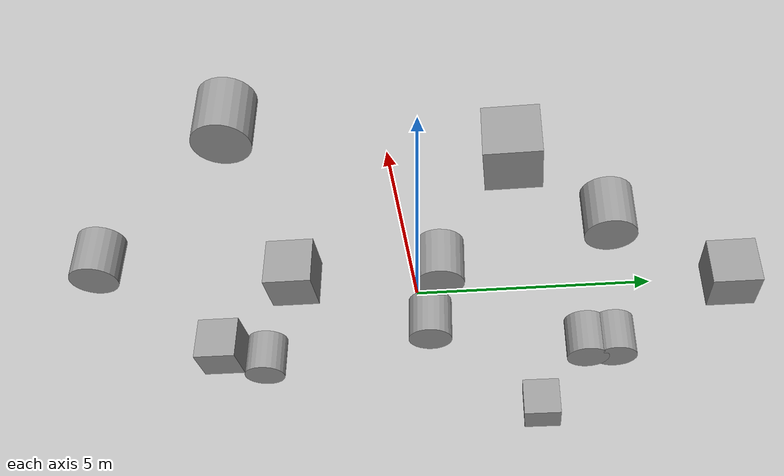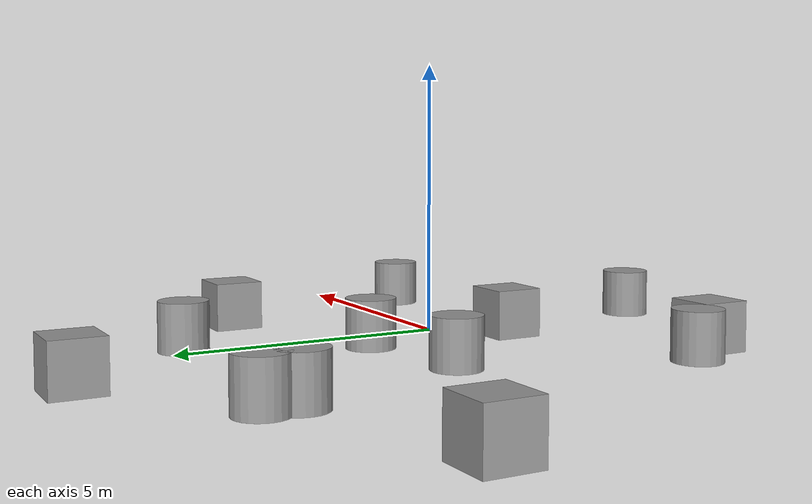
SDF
<?xml version='1.0'?>
<sdf version='1.7'>
  <model name='simple_map_big2'>
    <link name='link_0'>
      <inertial>
        <mass>1</mass>
        <inertia>
          <ixx>0.166667</ixx>
          <ixy>0</ixy>
          <ixz>0</ixz>
          <iyy>0.166667</iyy>
          <iyz>0</iyz>
          <izz>0.166667</izz>
        </inertia>
        <pose>0 0 0 0 -0 0</pose>
      </inertial>
      <pose>-2.14735 -5.05055 -0 0 -0 0</pose>
      <self_collide>0</self_collide>
      <enable_wind>0</enable_wind>
      <kinematic>0</kinematic>
      <visual name='visual'>
        <pose>0 0 0 0 -0 0</pose>
        <geometry>
          <box>
            <size>1 1 1</size>
          </box>
        </geometry>
        <material>
          <lighting>1</lighting>
          <script>
            <uri>file://media/materials/scripts/gazebo.material</uri>
            <name>Gazebo/Grey</name>
          </script>
          <shader type='pixel'/>
        </material>
        <transparency>0</transparency>
        <cast_shadows>1</cast_shadows>
      </visual>
      <collision name='collision'>
        <laser_retro>0</laser_retro>
        <max_contacts>10</max_contacts>
        <pose>0 0 0 0 -0 0</pose>
        <geometry>
          <box>
            <size>1 1 1</size>
          </box>
        </geometry>
        <surface>
          <friction>
            <ode>
              <mu>1</mu>
              <mu2>1</mu2>
              <fdir1>0 0 0</fdir1>
              <slip1>0</slip1>
              <slip2>0</slip2>
            </ode>
            <torsional>
              <coefficient>1</coefficient>
              <patch_radius>0</patch_radius>
              <surface_radius>0</surface_radius>
              <use_patch_radius>1</use_patch_radius>
              <ode>
                <slip>0</slip>
              </ode>
            </torsional>
          </friction>
          <bounce>
            <restitution_coefficient>0</restitution_coefficient>
            <threshold>1e+06</threshold>
          </bounce>
          <contact>
            <collide_without_contact>0</collide_without_contact>
            <collide_without_contact_bitmask>1</collide_without_contact_bitmask>
            <collide_bitmask>1</collide_bitmask>
            <ode>
              <soft_cfm>0</soft_cfm>
              <soft_erp>0.2</soft_erp>
              <kp>1e+13</kp>
              <kd>1</kd>
              <max_vel>0.01</max_vel>
              <min_depth>0</min_depth>
            </ode>
            <bullet>
              <split_impulse>1</split_impulse>
              <split_impulse_penetration_threshold>-0.01</split_impulse_penetration_threshold>
              <soft_cfm>0</soft_cfm>
              <soft_erp>0.2</soft_erp>
              <kp>1e+13</kp>
              <kd>1</kd>
            </bullet>
          </contact>
        </surface>
      </collision>
    </link>
    <link name='link_1'>
      <inertial>
        <mass>1</mass>
        <inertia>
          <ixx>0.166667</ixx>
          <ixy>0</ixy>
          <ixz>0</ixz>
          <iyy>0.166667</iyy>
          <iyz>0</iyz>
          <izz>0.166667</izz>
        </inertia>
        <pose>0 0 0 0 -0 0</pose>
      </inertial>
      <pose>1.16281 -2.51936 0 0 -0 0</pose>
      <self_collide>0</self_collide>
      <enable_wind>0</enable_wind>
      <kinematic>0</kinematic>
      <visual name='visual'>
        <pose>0 0 0 0 -0 0</pose>
        <geometry>
          <box>
            <size>1 1 1</size>
          </box>
        </geometry>
        <material>
          <lighting>1</lighting>
          <script>
            <uri>file://media/materials/scripts/gazebo.material</uri>
            <name>Gazebo/Grey</name>
          </script>
          <shader type='pixel'/>
        </material>
        <transparency>0</transparency>
        <cast_shadows>1</cast_shadows>
      </visual>
      <collision name='collision'>
        <laser_retro>0</laser_retro>
        <max_contacts>10</max_contacts>
        <pose>0 0 0 0 -0 0</pose>
        <geometry>
          <box>
            <size>1 1 1</size>
          </box>
        </geometry>
        <surface>
          <friction>
            <ode>
              <mu>1</mu>
              <mu2>1</mu2>
              <fdir1>0 0 0</fdir1>
              <slip1>0</slip1>
              <slip2>0</slip2>
            </ode>
            <torsional>
              <coefficient>1</coefficient>
              <patch_radius>0</patch_radius>
              <surface_radius>0</surface_radius>
              <use_patch_radius>1</use_patch_radius>
              <ode>
                <slip>0</slip>
              </ode>
            </torsional>
          </friction>
          <bounce>
            <restitution_coefficient>0</restitution_coefficient>
            <threshold>1e+06</threshold>
          </bounce>
          <contact>
            <collide_without_contact>0</collide_without_contact>
            <collide_without_contact_bitmask>1</collide_without_contact_bitmask>
            <collide_bitmask>1</collide_bitmask>
            <ode>
              <soft_cfm>0</soft_cfm>
              <soft_erp>0.2</soft_erp>
              <kp>1e+13</kp>
              <kd>1</kd>
              <max_vel>0.01</max_vel>
              <min_depth>0</min_depth>
            </ode>
            <bullet>
              <split_impulse>1</split_impulse>
              <split_impulse_penetration_threshold>-0.01</split_impulse_penetration_threshold>
              <soft_cfm>0</soft_cfm>
              <soft_erp>0.2</soft_erp>
              <kp>1e+13</kp>
              <kd>1</kd>
            </bullet>
          </contact>
        </surface>
      </collision>
    </link>
    <link name='link_10'>
      <inertial>
        <mass>1</mass>
        <inertia>
          <ixx>0.145833</ixx>
          <ixy>0</ixy>
          <ixz>0</ixz>
          <iyy>0.145833</iyy>
          <iyz>0</iyz>
          <izz>0.125</izz>
        </inertia>
        <pose>0 0 0 0 -0 0</pose>
      </inertial>
      <pose>2.713 3.93803 0 0 -0 0</pose>
      <self_collide>0</self_collide>
      <enable_wind>0</enable_wind>
      <kinematic>0</kinematic>
      <visual name='visual'>
        <pose>0 0 0 0 -0 0</pose>
        <geometry>
          <cylinder>
            <radius>0.5</radius>
            <length>1</length>
          </cylinder>
        </geometry>
        <material>
          <lighting>1</lighting>
          <script>
            <uri>file://media/materials/scripts/gazebo.material</uri>
            <name>Gazebo/Grey</name>
          </script>
          <shader type='pixel'/>
        </material>
        <transparency>0</transparency>
        <cast_shadows>1</cast_shadows>
      </visual>
      <collision name='collision'>
        <laser_retro>0</laser_retro>
        <max_contacts>10</max_contacts>
        <pose>0 0 0 0 -0 0</pose>
        <geometry>
          <cylinder>
            <radius>0.5</radius>
            <length>1</length>
          </cylinder>
        </geometry>
        <surface>
          <friction>
            <ode>
              <mu>1</mu>
              <mu2>1</mu2>
              <fdir1>0 0 0</fdir1>
              <slip1>0</slip1>
              <slip2>0</slip2>
            </ode>
            <torsional>
              <coefficient>1</coefficient>
              <patch_radius>0</patch_radius>
              <surface_radius>0</surface_radius>
              <use_patch_radius>1</use_patch_radius>
              <ode>
                <slip>0</slip>
              </ode>
            </torsional>
          </friction>
          <bounce>
            <restitution_coefficient>0</restitution_coefficient>
            <threshold>1e+06</threshold>
          </bounce>
          <contact>
            <collide_without_contact>0</collide_without_contact>
            <collide_without_contact_bitmask>1</collide_without_contact_bitmask>
            <collide_bitmask>1</collide_bitmask>
            <ode>
              <soft_cfm>0</soft_cfm>
              <soft_erp>0.2</soft_erp>
              <kp>1e+13</kp>
              <kd>1</kd>
              <max_vel>0.01</max_vel>
              <min_depth>0</min_depth>
            </ode>
            <bullet>
              <split_impulse>1</split_impulse>
              <split_impulse_penetration_threshold>-0.01</split_impulse_penetration_threshold>
              <soft_cfm>0</soft_cfm>
              <soft_erp>0.2</soft_erp>
              <kp>1e+13</kp>
              <kd>1</kd>
            </bullet>
          </contact>
        </surface>
      </collision>
    </link>
    <link name='link_11'>
      <inertial>
        <mass>1</mass>
        <inertia>
          <ixx>0.145833</ixx>
          <ixy>0</ixy>
          <ixz>0</ixz>
          <iyy>0.145833</iyy>
          <iyz>0</iyz>
          <izz>0.125</izz>
        </inertia>
        <pose>0 0 0 0 -0 0</pose>
      </inertial>
      <pose>1.25513 0.60625 0 0 -0 0</pose>
      <self_collide>0</self_collide>
      <enable_wind>0</enable_wind>
      <kinematic>0</kinematic>
      <visual name='visual'>
        <pose>0 0 0 0 -0 0</pose>
        <geometry>
          <cylinder>
            <radius>0.5</radius>
            <length>1</length>
          </cylinder>
        </geometry>
        <material>
          <lighting>1</lighting>
          <script>
            <uri>file://media/materials/scripts/gazebo.material</uri>
            <name>Gazebo/Grey</name>
          </script>
          <shader type='pixel'/>
        </material>
        <transparency>0</transparency>
        <cast_shadows>1</cast_shadows>
      </visual>
      <collision name='collision'>
        <laser_retro>0</laser_retro>
        <max_contacts>10</max_contacts>
        <pose>0 0 0 0 -0 0</pose>
        <geometry>
          <cylinder>
            <radius>0.5</radius>
            <length>1</length>
          </cylinder>
        </geometry>
        <surface>
          <friction>
            <ode>
              <mu>1</mu>
              <mu2>1</mu2>
              <fdir1>0 0 0</fdir1>
              <slip1>0</slip1>
              <slip2>0</slip2>
            </ode>
            <torsional>
              <coefficient>1</coefficient>
              <patch_radius>0</patch_radius>
              <surface_radius>0</surface_radius>
              <use_patch_radius>1</use_patch_radius>
              <ode>
                <slip>0</slip>
              </ode>
            </torsional>
          </friction>
          <bounce>
            <restitution_coefficient>0</restitution_coefficient>
            <threshold>1e+06</threshold>
          </bounce>
          <contact>
            <collide_without_contact>0</collide_without_contact>
            <collide_without_contact_bitmask>1</collide_without_contact_bitmask>
            <collide_bitmask>1</collide_bitmask>
            <ode>
              <soft_cfm>0</soft_cfm>
              <soft_erp>0.2</soft_erp>
              <kp>1e+13</kp>
              <kd>1</kd>
              <max_vel>0.01</max_vel>
              <min_depth>0</min_depth>
            </ode>
            <bullet>
              <split_impulse>1</split_impulse>
              <split_impulse_penetration_threshold>-0.01</split_impulse_penetration_threshold>
              <soft_cfm>0</soft_cfm>
              <soft_erp>0.2</soft_erp>
              <kp>1e+13</kp>
              <kd>1</kd>
            </bullet>
          </contact>
        </surface>
      </collision>
    </link>
    <link name='link_12'>
      <inertial>
        <mass>1</mass>
        <inertia>
          <ixx>0.145833</ixx>
          <ixy>0</ixy>
          <ixz>0</ixz>
          <iyy>0.145833</iyy>
          <iyz>0</iyz>
          <izz>0.125</izz>
        </inertia>
        <pose>0 0 0 0 -0 0</pose>
      </inertial>
      <pose>2.07511 -6.40625 0 0 -0 0</pose>
      <self_collide>0</self_collide>
      <enable_wind>0</enable_wind>
      <kinematic>0</kinematic>
      <visual name='visual'>
        <pose>0 0 0 0 -0 0</pose>
        <geometry>
          <cylinder>
            <radius>0.5</radius>
            <length>1</length>
          </cylinder>
        </geometry>
        <material>
          <lighting>1</lighting>
          <script>
            <uri>file://media/materials/scripts/gazebo.material</uri>
            <name>Gazebo/Grey</name>
          </script>
          <shader type='pixel'/>
        </material>
        <transparency>0</transparency>
        <cast_shadows>1</cast_shadows>
      </visual>
      <collision name='collision'>
        <laser_retro>0</laser_retro>
        <max_contacts>10</max_contacts>
        <pose>0 0 0 0 -0 0</pose>
        <geometry>
          <cylinder>
            <radius>0.5</radius>
            <length>1</length>
          </cylinder>
        </geometry>
        <surface>
          <friction>
            <ode>
              <mu>1</mu>
              <mu2>1</mu2>
              <fdir1>0 0 0</fdir1>
              <slip1>0</slip1>
              <slip2>0</slip2>
            </ode>
            <torsional>
              <coefficient>1</coefficient>
              <patch_radius>0</patch_radius>
              <surface_radius>0</surface_radius>
              <use_patch_radius>1</use_patch_radius>
              <ode>
                <slip>0</slip>
              </ode>
            </torsional>
          </friction>
          <bounce>
            <restitution_coefficient>0</restitution_coefficient>
            <threshold>1e+06</threshold>
          </bounce>
          <contact>
            <collide_without_contact>0</collide_without_contact>
            <collide_without_contact_bitmask>1</collide_without_contact_bitmask>
            <collide_bitmask>1</collide_bitmask>
            <ode>
              <soft_cfm>0</soft_cfm>
              <soft_erp>0.2</soft_erp>
              <kp>1e+13</kp>
              <kd>1</kd>
              <max_vel>0.01</max_vel>
              <min_depth>0</min_depth>
            </ode>
            <bullet>
              <split_impulse>1</split_impulse>
              <split_impulse_penetration_threshold>-0.01</split_impulse_penetration_threshold>
              <soft_cfm>0</soft_cfm>
              <soft_erp>0.2</soft_erp>
              <kp>1e+13</kp>
              <kd>1</kd>
            </bullet>
          </contact>
        </surface>
      </collision>
    </link>
    <link name='link_14'>
      <inertial>
        <mass>1</mass>
        <inertia>
          <ixx>0.166667</ixx>
          <ixy>0</ixy>
          <ixz>0</ixz>
          <iyy>0.166667</iyy>
          <iyz>0</iyz>
          <izz>0.166667</izz>
        </inertia>
        <pose>0 0 0 0 -0 0</pose>
      </inertial>
      <pose>0.217301 6.66191 0 0 -0 0</pose>
      <self_collide>0</self_collide>
      <enable_wind>0</enable_wind>
      <kinematic>0</kinematic>
      <visual name='visual'>
        <pose>0 0 0 0 -0 0</pose>
        <geometry>
          <box>
            <size>1 1 1</size>
          </box>
        </geometry>
        <material>
          <lighting>1</lighting>
          <script>
            <uri>file://media/materials/scripts/gazebo.material</uri>
            <name>Gazebo/Grey</name>
          </script>
          <shader type='pixel'/>
        </material>
        <transparency>0</transparency>
        <cast_shadows>1</cast_shadows>
      </visual>
      <collision name='collision'>
        <laser_retro>0</laser_retro>
        <max_contacts>10</max_contacts>
        <pose>0 0 0 0 -0 0</pose>
        <geometry>
          <box>
            <size>1 1 1</size>
          </box>
        </geometry>
        <surface>
          <friction>
            <ode>
              <mu>1</mu>
              <mu2>1</mu2>
              <fdir1>0 0 0</fdir1>
              <slip1>0</slip1>
              <slip2>0</slip2>
            </ode>
            <torsional>
              <coefficient>1</coefficient>
              <patch_radius>0</patch_radius>
              <surface_radius>0</surface_radius>
              <use_patch_radius>1</use_patch_radius>
              <ode>
                <slip>0</slip>
              </ode>
            </torsional>
          </friction>
          <bounce>
            <restitution_coefficient>0</restitution_coefficient>
            <threshold>1e+06</threshold>
          </bounce>
          <contact>
            <collide_without_contact>0</collide_without_contact>
            <collide_without_contact_bitmask>1</collide_without_contact_bitmask>
            <collide_bitmask>1</collide_bitmask>
            <ode>
              <soft_cfm>0</soft_cfm>
              <soft_erp>0.2</soft_erp>
              <kp>1e+13</kp>
              <kd>1</kd>
              <max_vel>0.01</max_vel>
              <min_depth>0</min_depth>
            </ode>
            <bullet>
              <split_impulse>1</split_impulse>
              <split_impulse_penetration_threshold>-0.01</split_impulse_penetration_threshold>
              <soft_cfm>0</soft_cfm>
              <soft_erp>0.2</soft_erp>
              <kp>1e+13</kp>
              <kd>1</kd>
            </bullet>
          </contact>
        </surface>
      </collision>
    </link>
    <link name='link_15'>
      <inertial>
        <mass>1</mass>
        <inertia>
          <ixx>0.145833</ixx>
          <ixy>0</ixy>
          <ixz>0</ixz>
          <iyy>0.145833</iyy>
          <iyz>0</iyz>
          <izz>0.125</izz>
        </inertia>
        <pose>0 0 0 0 -0 0</pose>
      </inertial>
      <pose>-2.66292 4.4717 -0 0 -0 0</pose>
      <self_collide>0</self_collide>
      <enable_wind>0</enable_wind>
      <kinematic>0</kinematic>
      <visual name='visual'>
        <pose>0 0 0 0 -0 0</pose>
        <geometry>
          <cylinder>
            <radius>0.5</radius>
            <length>1</length>
          </cylinder>
        </geometry>
        <material>
          <lighting>1</lighting>
          <script>
            <uri>file://media/materials/scripts/gazebo.material</uri>
            <name>Gazebo/Grey</name>
          </script>
          <shader type='pixel'/>
        </material>
        <transparency>0</transparency>
        <cast_shadows>1</cast_shadows>
      </visual>
      <collision name='collision'>
        <laser_retro>0</laser_retro>
        <max_contacts>10</max_contacts>
        <pose>0 0 0 0 -0 0</pose>
        <geometry>
          <cylinder>
            <radius>0.5</radius>
            <length>1</length>
          </cylinder>
        </geometry>
        <surface>
          <friction>
            <ode>
              <mu>1</mu>
              <mu2>1</mu2>
              <fdir1>0 0 0</fdir1>
              <slip1>0</slip1>
              <slip2>0</slip2>
            </ode>
            <torsional>
              <coefficient>1</coefficient>
              <patch_radius>0</patch_radius>
              <surface_radius>0</surface_radius>
              <use_patch_radius>1</use_patch_radius>
              <ode>
                <slip>0</slip>
              </ode>
            </torsional>
          </friction>
          <bounce>
            <restitution_coefficient>0</restitution_coefficient>
            <threshold>1e+06</threshold>
          </bounce>
          <contact>
            <collide_without_contact>0</collide_without_contact>
            <collide_without_contact_bitmask>1</collide_without_contact_bitmask>
            <collide_bitmask>1</collide_bitmask>
            <ode>
              <soft_cfm>0</soft_cfm>
              <soft_erp>0.2</soft_erp>
              <kp>1e+13</kp>
              <kd>1</kd>
              <max_vel>0.01</max_vel>
              <min_depth>0</min_depth>
            </ode>
            <bullet>
              <split_impulse>1</split_impulse>
              <split_impulse_penetration_threshold>-0.01</split_impulse_penetration_threshold>
              <soft_cfm>0</soft_cfm>
              <soft_erp>0.2</soft_erp>
              <kp>1e+13</kp>
              <kd>1</kd>
            </bullet>
          </contact>
        </surface>
      </collision>
    </link>
    <link name='link_2'>
      <inertial>
        <mass>1</mass>
        <inertia>
          <ixx>0.145833</ixx>
          <ixy>0</ixy>
          <ixz>0</ixz>
          <iyy>0.145833</iyy>
          <iyz>0</iyz>
          <izz>0.125</izz>
        </inertia>
        <pose>0 0 0 0 -0 0</pose>
      </inertial>
      <pose>-2.88083 -4.10779 -0 0 -0 0</pose>
      <self_collide>0</self_collide>
      <enable_wind>0</enable_wind>
      <kinematic>0</kinematic>
      <visual name='visual'>
        <pose>0 0 0 0 -0 0</pose>
        <geometry>
          <cylinder>
            <radius>0.5</radius>
            <length>1</length>
          </cylinder>
        </geometry>
        <material>
          <lighting>1</lighting>
          <script>
            <uri>file://media/materials/scripts/gazebo.material</uri>
            <name>Gazebo/Grey</name>
          </script>
          <shader type='pixel'/>
        </material>
        <transparency>0</transparency>
        <cast_shadows>1</cast_shadows>
      </visual>
      <collision name='collision'>
        <laser_retro>0</laser_retro>
        <max_contacts>10</max_contacts>
        <pose>0 0 0 0 -0 0</pose>
        <geometry>
          <cylinder>
            <radius>0.5</radius>
            <length>1</length>
          </cylinder>
        </geometry>
        <surface>
          <friction>
            <ode>
              <mu>1</mu>
              <mu2>1</mu2>
              <fdir1>0 0 0</fdir1>
              <slip1>0</slip1>
              <slip2>0</slip2>
            </ode>
            <torsional>
              <coefficient>1</coefficient>
              <patch_radius>0</patch_radius>
              <surface_radius>0</surface_radius>
              <use_patch_radius>1</use_patch_radius>
              <ode>
                <slip>0</slip>
              </ode>
            </torsional>
          </friction>
          <bounce>
            <restitution_coefficient>0</restitution_coefficient>
            <threshold>1e+06</threshold>
          </bounce>
          <contact>
            <collide_without_contact>0</collide_without_contact>
            <collide_without_contact_bitmask>1</collide_without_contact_bitmask>
            <collide_bitmask>1</collide_bitmask>
            <ode>
              <soft_cfm>0</soft_cfm>
              <soft_erp>0.2</soft_erp>
              <kp>1e+13</kp>
              <kd>1</kd>
              <max_vel>0.01</max_vel>
              <min_depth>0</min_depth>
            </ode>
            <bullet>
              <split_impulse>1</split_impulse>
              <split_impulse_penetration_threshold>-0.01</split_impulse_penetration_threshold>
              <soft_cfm>0</soft_cfm>
              <soft_erp>0.2</soft_erp>
              <kp>1e+13</kp>
              <kd>1</kd>
            </bullet>
          </contact>
        </surface>
      </collision>
    </link>
    <link name='link_3'>
      <inertial>
        <mass>1</mass>
        <inertia>
          <ixx>0.166667</ixx>
          <ixy>0</ixy>
          <ixz>0</ixz>
          <iyy>0.166667</iyy>
          <iyz>0</iyz>
          <izz>0.166667</izz>
        </inertia>
        <pose>0 0 0 0 -0 0</pose>
      </inertial>
      <pose>-6.59879 2.792 -0 0 -0 0</pose>
      <self_collide>0</self_collide>
      <enable_wind>0</enable_wind>
      <kinematic>0</kinematic>
      <visual name='visual'>
        <pose>0 0 0 0 -0 0</pose>
        <geometry>
          <box>
            <size>1 1 1</size>
          </box>
        </geometry>
        <material>
          <lighting>1</lighting>
          <script>
            <uri>file://media/materials/scripts/gazebo.material</uri>
            <name>Gazebo/Grey</name>
          </script>
          <shader type='pixel'/>
        </material>
        <transparency>0</transparency>
        <cast_shadows>1</cast_shadows>
      </visual>
      <collision name='collision'>
        <laser_retro>0</laser_retro>
        <max_contacts>10</max_contacts>
        <pose>0 0 0 0 -0 0</pose>
        <geometry>
          <box>
            <size>1 1 1</size>
          </box>
        </geometry>
        <surface>
          <friction>
            <ode>
              <mu>1</mu>
              <mu2>1</mu2>
              <fdir1>0 0 0</fdir1>
              <slip1>0</slip1>
              <slip2>0</slip2>
            </ode>
            <torsional>
              <coefficient>1</coefficient>
              <patch_radius>0</patch_radius>
              <surface_radius>0</surface_radius>
              <use_patch_radius>1</use_patch_radius>
              <ode>
                <slip>0</slip>
              </ode>
            </torsional>
          </friction>
          <bounce>
            <restitution_coefficient>0</restitution_coefficient>
            <threshold>1e+06</threshold>
          </bounce>
          <contact>
            <collide_without_contact>0</collide_without_contact>
            <collide_without_contact_bitmask>1</collide_without_contact_bitmask>
            <collide_bitmask>1</collide_bitmask>
            <ode>
              <soft_cfm>0</soft_cfm>
              <soft_erp>0.2</soft_erp>
              <kp>1e+13</kp>
              <kd>1</kd>
              <max_vel>0.01</max_vel>
              <min_depth>0</min_depth>
            </ode>
            <bullet>
              <split_impulse>1</split_impulse>
              <split_impulse_penetration_threshold>-0.01</split_impulse_penetration_threshold>
              <soft_cfm>0</soft_cfm>
              <soft_erp>0.2</soft_erp>
              <kp>1e+13</kp>
              <kd>1</kd>
            </bullet>
          </contact>
        </surface>
      </collision>
    </link>
    <link name='link_5'>
      <inertial>
        <mass>1</mass>
        <inertia>
          <ixx>0.145833</ixx>
          <ixy>0</ixy>
          <ixz>0</ixz>
          <iyy>0.145833</iyy>
          <iyz>0</iyz>
          <izz>0.125</izz>
        </inertia>
        <pose>0 0 0 0 -0 0</pose>
      </inertial>
      <pose>-2.64423 3.81355 -0 0 -0 0</pose>
      <self_collide>0</self_collide>
      <enable_wind>0</enable_wind>
      <kinematic>0</kinematic>
      <visual name='visual'>
        <pose>0 0 0 0 -0 0</pose>
        <geometry>
          <cylinder>
            <radius>0.5</radius>
            <length>1</length>
          </cylinder>
        </geometry>
        <material>
          <lighting>1</lighting>
          <script>
            <uri>file://media/materials/scripts/gazebo.material</uri>
            <name>Gazebo/Grey</name>
          </script>
          <shader type='pixel'/>
        </material>
        <transparency>0</transparency>
        <cast_shadows>1</cast_shadows>
      </visual>
      <collision name='collision'>
        <laser_retro>0</laser_retro>
        <max_contacts>10</max_contacts>
        <pose>0 0 0 0 -0 0</pose>
        <geometry>
          <cylinder>
            <radius>0.5</radius>
            <length>1</length>
          </cylinder>
        </geometry>
        <surface>
          <friction>
            <ode>
              <mu>1</mu>
              <mu2>1</mu2>
              <fdir1>0 0 0</fdir1>
              <slip1>0</slip1>
              <slip2>0</slip2>
            </ode>
            <torsional>
              <coefficient>1</coefficient>
              <patch_radius>0</patch_radius>
              <surface_radius>0</surface_radius>
              <use_patch_radius>1</use_patch_radius>
              <ode>
                <slip>0</slip>
              </ode>
            </torsional>
          </friction>
          <bounce>
            <restitution_coefficient>0</restitution_coefficient>
            <threshold>1e+06</threshold>
          </bounce>
          <contact>
            <collide_without_contact>0</collide_without_contact>
            <collide_without_contact_bitmask>1</collide_without_contact_bitmask>
            <collide_bitmask>1</collide_bitmask>
            <ode>
              <soft_cfm>0</soft_cfm>
              <soft_erp>0.2</soft_erp>
              <kp>1e+13</kp>
              <kd>1</kd>
              <max_vel>0.01</max_vel>
              <min_depth>0</min_depth>
            </ode>
            <bullet>
              <split_impulse>1</split_impulse>
              <split_impulse_penetration_threshold>-0.01</split_impulse_penetration_threshold>
              <soft_cfm>0</soft_cfm>
              <soft_erp>0.2</soft_erp>
              <kp>1e+13</kp>
              <kd>1</kd>
            </bullet>
          </contact>
        </surface>
      </collision>
    </link>
    <link name='link_6'>
      <inertial>
        <mass>1</mass>
        <inertia>
          <ixx>0.145833</ixx>
          <ixy>0</ixy>
          <ixz>0</ixz>
          <iyy>0.145833</iyy>
          <iyz>0</iyz>
          <izz>0.125</izz>
        </inertia>
        <pose>0 0 0 0 -0 0</pose>
      </inertial>
      <pose>-1.28721 0.164496 -0 0 -0 0</pose>
      <self_collide>0</self_collide>
      <enable_wind>0</enable_wind>
      <kinematic>0</kinematic>
      <visual name='visual'>
        <pose>0 0 0 0 -0 0</pose>
        <geometry>
          <cylinder>
            <radius>0.5</radius>
            <length>1</length>
          </cylinder>
        </geometry>
        <material>
          <lighting>1</lighting>
          <script>
            <uri>file://media/materials/scripts/gazebo.material</uri>
            <name>Gazebo/Grey</name>
          </script>
          <shader type='pixel'/>
        </material>
        <transparency>0</transparency>
        <cast_shadows>1</cast_shadows>
      </visual>
      <collision name='collision'>
        <laser_retro>0</laser_retro>
        <max_contacts>10</max_contacts>
        <pose>0 0 0 0 -0 0</pose>
        <geometry>
          <cylinder>
            <radius>0.5</radius>
            <length>1</length>
          </cylinder>
        </geometry>
        <surface>
          <friction>
            <ode>
              <mu>1</mu>
              <mu2>1</mu2>
              <fdir1>0 0 0</fdir1>
              <slip1>0</slip1>
              <slip2>0</slip2>
            </ode>
            <torsional>
              <coefficient>1</coefficient>
              <patch_radius>0</patch_radius>
              <surface_radius>0</surface_radius>
              <use_patch_radius>1</use_patch_radius>
              <ode>
                <slip>0</slip>
              </ode>
            </torsional>
          </friction>
          <bounce>
            <restitution_coefficient>0</restitution_coefficient>
            <threshold>1e+06</threshold>
          </bounce>
          <contact>
            <collide_without_contact>0</collide_without_contact>
            <collide_without_contact_bitmask>1</collide_without_contact_bitmask>
            <collide_bitmask>1</collide_bitmask>
            <ode>
              <soft_cfm>0</soft_cfm>
              <soft_erp>0.2</soft_erp>
              <kp>1e+13</kp>
              <kd>1</kd>
              <max_vel>0.01</max_vel>
              <min_depth>0</min_depth>
            </ode>
            <bullet>
              <split_impulse>1</split_impulse>
              <split_impulse_penetration_threshold>-0.01</split_impulse_penetration_threshold>
              <soft_cfm>0</soft_cfm>
              <soft_erp>0.2</soft_erp>
              <kp>1e+13</kp>
              <kd>1</kd>
            </bullet>
          </contact>
        </surface>
      </collision>
    </link>
    <link name='link_7'>
      <inertial>
        <mass>1</mass>
        <inertia>
          <ixx>0.145833</ixx>
          <ixy>0</ixy>
          <ixz>0</ixz>
          <iyy>0.145833</iyy>
          <iyz>0</iyz>
          <izz>0.125</izz>
        </inertia>
        <pose>0 0 0 0 -0 0</pose>
      </inertial>
      <pose>6.10851 -2.54517 0 0 -0 0</pose>
      <self_collide>0</self_collide>
      <enable_wind>0</enable_wind>
      <kinematic>0</kinematic>
      <visual name='visual'>
        <pose>0 0 0 0 -0 0</pose>
        <geometry>
          <cylinder>
            <radius>0.5</radius>
            <length>1</length>
          </cylinder>
        </geometry>
        <material>
          <lighting>1</lighting>
          <script>
            <uri>file://media/materials/scripts/gazebo.material</uri>
            <name>Gazebo/Grey</name>
          </script>
          <shader type='pixel'/>
        </material>
        <transparency>0</transparency>
        <cast_shadows>1</cast_shadows>
      </visual>
      <collision name='collision'>
        <laser_retro>0</laser_retro>
        <max_contacts>10</max_contacts>
        <pose>0 0 0 0 -0 0</pose>
        <geometry>
          <cylinder>
            <radius>0.5</radius>
            <length>1</length>
          </cylinder>
        </geometry>
        <surface>
          <friction>
            <ode>
              <mu>1</mu>
              <mu2>1</mu2>
              <fdir1>0 0 0</fdir1>
              <slip1>0</slip1>
              <slip2>0</slip2>
            </ode>
            <torsional>
              <coefficient>1</coefficient>
              <patch_radius>0</patch_radius>
              <surface_radius>0</surface_radius>
              <use_patch_radius>1</use_patch_radius>
              <ode>
                <slip>0</slip>
              </ode>
            </torsional>
          </friction>
          <bounce>
            <restitution_coefficient>0</restitution_coefficient>
            <threshold>1e+06</threshold>
          </bounce>
          <contact>
            <collide_without_contact>0</collide_without_contact>
            <collide_without_contact_bitmask>1</collide_without_contact_bitmask>
            <collide_bitmask>1</collide_bitmask>
            <ode>
              <soft_cfm>0</soft_cfm>
              <soft_erp>0.2</soft_erp>
              <kp>1e+13</kp>
              <kd>1</kd>
              <max_vel>0.01</max_vel>
              <min_depth>0</min_depth>
            </ode>
            <bullet>
              <split_impulse>1</split_impulse>
              <split_impulse_penetration_threshold>-0.01</split_impulse_penetration_threshold>
              <soft_cfm>0</soft_cfm>
              <soft_erp>0.2</soft_erp>
              <kp>1e+13</kp>
              <kd>1</kd>
            </bullet>
          </contact>
        </surface>
      </collision>
    </link>
    <link name='link_8'>
      <inertial>
        <mass>1</mass>
        <inertia>
          <ixx>0.166667</ixx>
          <ixy>0</ixy>
          <ixz>0</ixz>
          <iyy>0.166667</iyy>
          <iyz>0</iyz>
          <izz>0.166667</izz>
        </inertia>
        <pose>0 0 0 0 -0 0</pose>
      </inertial>
      <pose>4.90164 2.14702 0 0 -0 0</pose>
      <self_collide>0</self_collide>
      <enable_wind>0</enable_wind>
      <kinematic>0</kinematic>
      <visual name='visual'>
        <pose>0 0 0 0 -0 0</pose>
        <geometry>
          <box>
            <size>1 1 1</size>
          </box>
        </geometry>
        <material>
          <lighting>1</lighting>
          <script>
            <uri>file://media/materials/scripts/gazebo.material</uri>
            <name>Gazebo/Grey</name>
          </script>
          <shader type='pixel'/>
        </material>
        <transparency>0</transparency>
        <cast_shadows>1</cast_shadows>
      </visual>
      <collision name='collision'>
        <laser_retro>0</laser_retro>
        <max_contacts>10</max_contacts>
        <pose>0 0 0 0 -0 0</pose>
        <geometry>
          <box>
            <size>1 1 1</size>
          </box>
        </geometry>
        <surface>
          <friction>
            <ode>
              <mu>1</mu>
              <mu2>1</mu2>
              <fdir1>0 0 0</fdir1>
              <slip1>0</slip1>
              <slip2>0</slip2>
            </ode>
            <torsional>
              <coefficient>1</coefficient>
              <patch_radius>0</patch_radius>
              <surface_radius>0</surface_radius>
              <use_patch_radius>1</use_patch_radius>
              <ode>
                <slip>0</slip>
              </ode>
            </torsional>
          </friction>
          <bounce>
            <restitution_coefficient>0</restitution_coefficient>
            <threshold>1e+06</threshold>
          </bounce>
          <contact>
            <collide_without_contact>0</collide_without_contact>
            <collide_without_contact_bitmask>1</collide_without_contact_bitmask>
            <collide_bitmask>1</collide_bitmask>
            <ode>
              <soft_cfm>0</soft_cfm>
              <soft_erp>0.2</soft_erp>
              <kp>1e+13</kp>
              <kd>1</kd>
              <max_vel>0.01</max_vel>
              <min_depth>0</min_depth>
            </ode>
            <bullet>
              <split_impulse>1</split_impulse>
              <split_impulse_penetration_threshold>-0.01</split_impulse_penetration_threshold>
              <soft_cfm>0</soft_cfm>
              <soft_erp>0.2</soft_erp>
              <kp>1e+13</kp>
              <kd>1</kd>
            </bullet>
          </contact>
        </surface>
      </collision>
    </link>
    <static>0</static>
    <allow_auto_disable>1</allow_auto_disable>
  </model>
</sdf>
